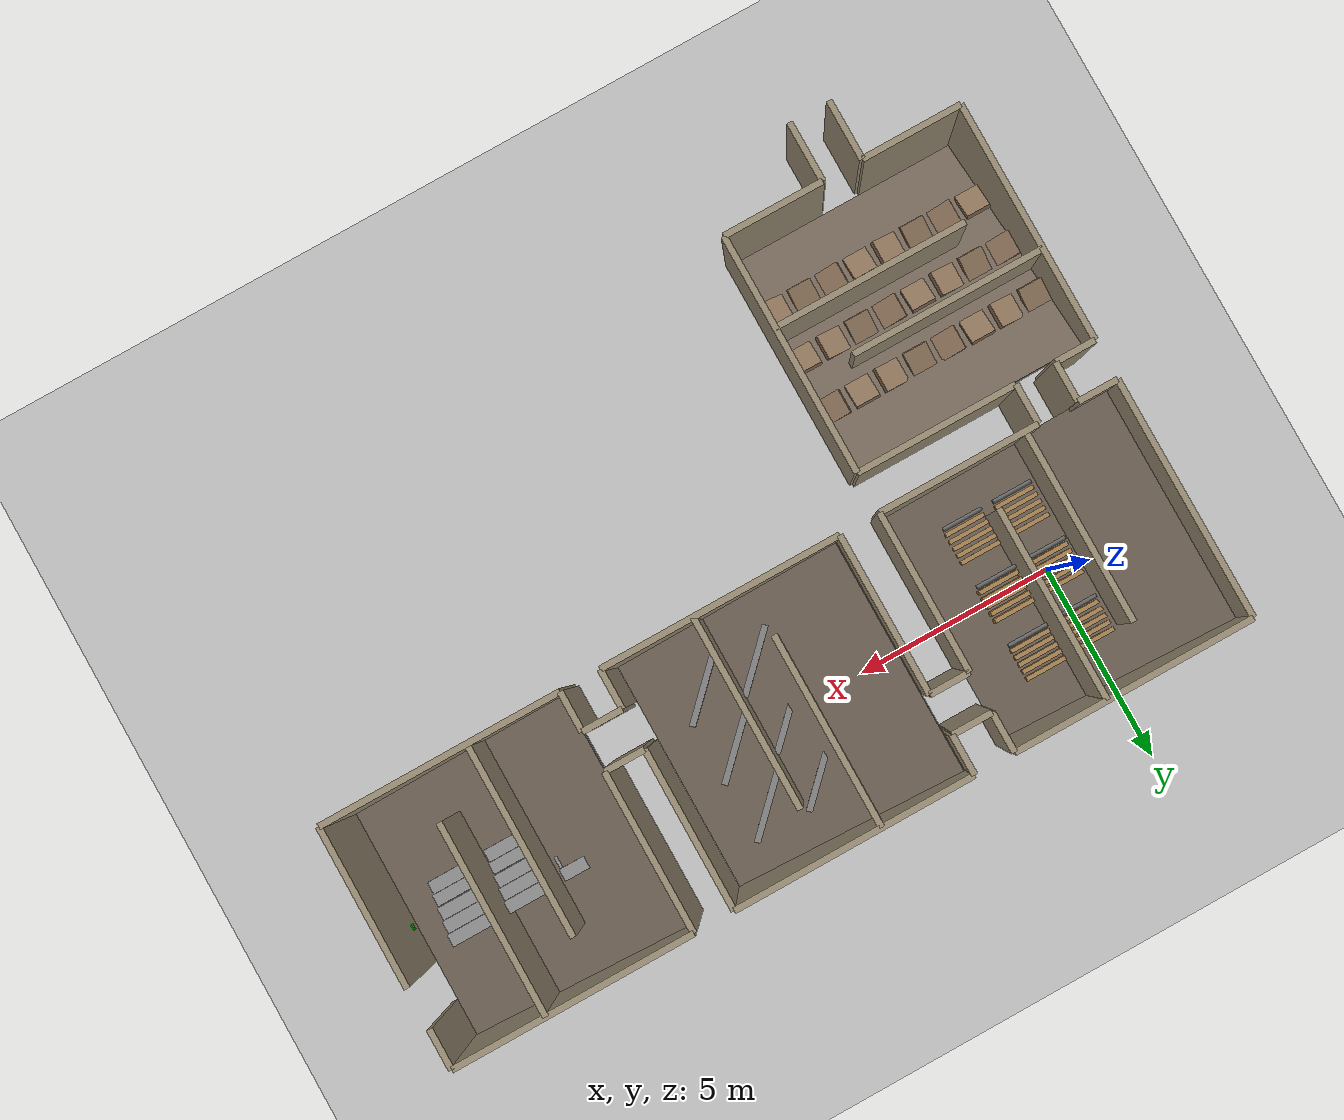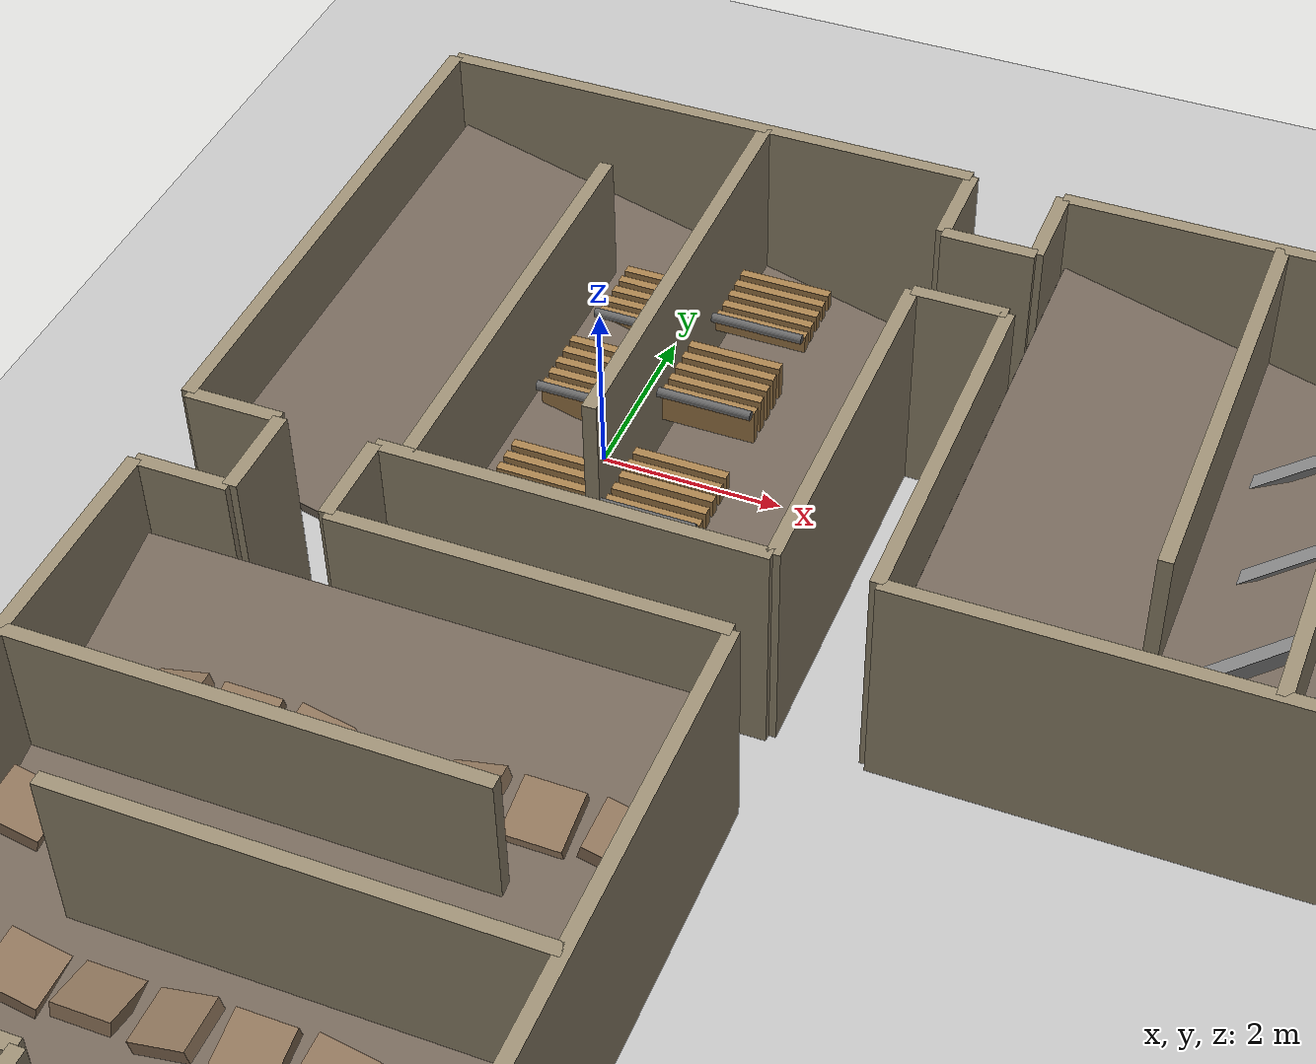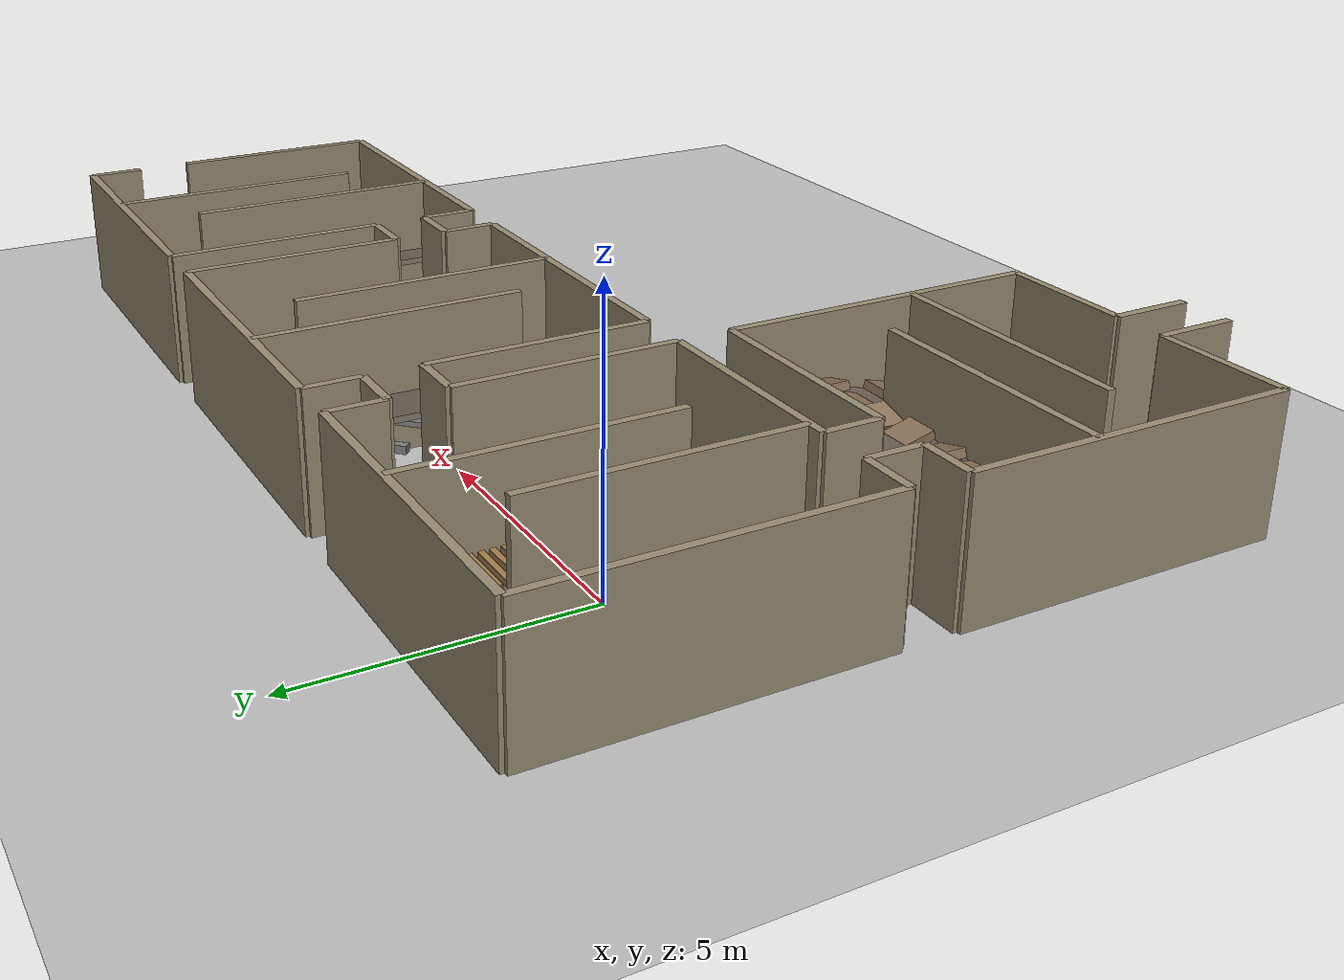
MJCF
<mujoco model="lrc_2025_atlanta">
  <compiler angle="radian" coordinate="local"/>
  <option timestep="0.002" gravity="0 0 -9.81"/>

  <asset>
    <texture name="grid" type="2d" builtin="checker"
             rgb1="0.8 0.8 0.8" rgb2="0.7 0.7 0.7"
             width="512" height="512"/>
    <material name="ground_mat" texture="grid" texrepeat="10 10"/>
  </asset>

  <worldbody>
    <light pos="0 0 10" dir="-0.5 0.1 -0.9" diffuse="0.8 0.8 0.8"/>
    <geom name="ground" type="plane" size="25 25 0.1"
          material="ground_mat"/>

    <geom name="LA_S_a" type="box" pos="-1.7500 -10.0000 1.2500" size="1.2500 0.0750 1.2500" rgba="0.6 0.55 0.45 1.0"/>
    <geom name="LA_S_b" type="box" pos="1.7500 -10.0000 1.2500" size="1.2500 0.0750 1.2500" rgba="0.6 0.55 0.45 1.0"/>
    <geom name="LA_N_a" type="box" pos="-2.5000 -4.0000 1.2500" size="0.5000 0.0750 1.2500" rgba="0.6 0.55 0.45 1.0"/>
    <geom name="LA_N_b" type="box" pos="1.0000 -4.0000 1.2500" size="2.0000 0.0750 1.2500" rgba="0.6 0.55 0.45 1.0"/>
    <geom name="LA_W" type="box" pos="-3.0000 -7.0000 1.2500" size="0.0750 3.0000 1.2500" rgba="0.6 0.55 0.45 1.0"/>
    <geom name="LA_E" type="box" pos="3.0000 -7.0000 1.2500" size="0.0750 3.0000 1.2500" rgba="0.6 0.55 0.45 1.0"/>
    <geom name="LA_d0" type="box" pos="0.6000 -7.6750 1.2500" size="2.4000 0.0750 1.2500" rgba="0.6 0.55 0.45 1.0"/>
    <geom name="LA_d1" type="box" pos="-0.6000 -6.3250 1.2500" size="2.4000 0.0750 1.2500" rgba="0.6 0.55 0.45 1.0"/>
    <geom name="LA_floor" type="box" pos="0 -7 0.8248" size="3.0000 3.0000 0.0500" rgba="0.45 0.4 0.35 1.0" euler="0.2618 0 0"/>
    <geom name="ramp_0_0" type="box" pos="-2.6250 -8.3500 0.6036" size="0.3000 0.3000 0.0800" rgba="0.55 0.45 0.35 1.0" euler="0.2618 0 0"/>
    <geom name="ramp_0_1" type="box" pos="-1.8750 -8.3500 0.6036" size="0.3000 0.3000 0.0800" rgba="0.55 0.45 0.35 1.0" euler="0 0.2618 0"/>
    <geom name="ramp_0_2" type="box" pos="-1.1250 -8.3500 0.6036" size="0.3000 0.3000 0.0800" rgba="0.55 0.45 0.35 1.0" euler="-0.2618 0 0"/>
    <geom name="ramp_0_3" type="box" pos="-0.3750 -8.3500 0.6036" size="0.3000 0.3000 0.0800" rgba="0.55 0.45 0.35 1.0" euler="0 -0.2618 0"/>
    <geom name="ramp_0_4" type="box" pos="0.3750 -8.3500 0.6036" size="0.3000 0.3000 0.0800" rgba="0.55 0.45 0.35 1.0" euler="0.2618 0 0"/>
    <geom name="ramp_0_5" type="box" pos="1.1250 -8.3500 0.6036" size="0.3000 0.3000 0.0800" rgba="0.55 0.45 0.35 1.0" euler="0 0.2618 0"/>
    <geom name="ramp_0_6" type="box" pos="1.8750 -8.3500 0.6036" size="0.3000 0.3000 0.0800" rgba="0.55 0.45 0.35 1.0" euler="-0.2618 0 0"/>
    <geom name="ramp_0_7" type="box" pos="2.6250 -8.3500 0.6036" size="0.3000 0.3000 0.0800" rgba="0.55 0.45 0.35 1.0" euler="0 -0.2618 0"/>
    <geom name="ramp_1_0" type="box" pos="-2.6250 -7.0000 0.9530" size="0.3000 0.3000 0.0800" rgba="0.55 0.45 0.35 1.0" euler="0 0.2618 0"/>
    <geom name="ramp_1_1" type="box" pos="-1.8750 -7.0000 0.9530" size="0.3000 0.3000 0.0800" rgba="0.55 0.45 0.35 1.0" euler="-0.2618 0 0"/>
    <geom name="ramp_1_2" type="box" pos="-1.1250 -7.0000 0.9530" size="0.3000 0.3000 0.0800" rgba="0.55 0.45 0.35 1.0" euler="0 -0.2618 0"/>
    <geom name="ramp_1_3" type="box" pos="-0.3750 -7.0000 0.9530" size="0.3000 0.3000 0.0800" rgba="0.55 0.45 0.35 1.0" euler="0.2618 0 0"/>
    <geom name="ramp_1_4" type="box" pos="0.3750 -7.0000 0.9530" size="0.3000 0.3000 0.0800" rgba="0.55 0.45 0.35 1.0" euler="0 0.2618 0"/>
    <geom name="ramp_1_5" type="box" pos="1.1250 -7.0000 0.9530" size="0.3000 0.3000 0.0800" rgba="0.55 0.45 0.35 1.0" euler="-0.2618 0 0"/>
    <geom name="ramp_1_6" type="box" pos="1.8750 -7.0000 0.9530" size="0.3000 0.3000 0.0800" rgba="0.55 0.45 0.35 1.0" euler="0 -0.2618 0"/>
    <geom name="ramp_1_7" type="box" pos="2.6250 -7.0000 0.9530" size="0.3000 0.3000 0.0800" rgba="0.55 0.45 0.35 1.0" euler="0.2618 0 0"/>
    <geom name="ramp_2_0" type="box" pos="-2.6250 -5.6500 1.3025" size="0.3000 0.3000 0.0800" rgba="0.55 0.45 0.35 1.0" euler="-0.2618 0 0"/>
    <geom name="ramp_2_1" type="box" pos="-1.8750 -5.6500 1.3025" size="0.3000 0.3000 0.0800" rgba="0.55 0.45 0.35 1.0" euler="0 -0.2618 0"/>
    <geom name="ramp_2_2" type="box" pos="-1.1250 -5.6500 1.3025" size="0.3000 0.3000 0.0800" rgba="0.55 0.45 0.35 1.0" euler="0.2618 0 0"/>
    <geom name="ramp_2_3" type="box" pos="-0.3750 -5.6500 1.3025" size="0.3000 0.3000 0.0800" rgba="0.55 0.45 0.35 1.0" euler="0 0.2618 0"/>
    <geom name="ramp_2_4" type="box" pos="0.3750 -5.6500 1.3025" size="0.3000 0.3000 0.0800" rgba="0.55 0.45 0.35 1.0" euler="-0.2618 0 0"/>
    <geom name="ramp_2_5" type="box" pos="1.1250 -5.6500 1.3025" size="0.3000 0.3000 0.0800" rgba="0.55 0.45 0.35 1.0" euler="0 -0.2618 0"/>
    <geom name="ramp_2_6" type="box" pos="1.8750 -5.6500 1.3025" size="0.3000 0.3000 0.0800" rgba="0.55 0.45 0.35 1.0" euler="0.2618 0 0"/>
    <geom name="ramp_2_7" type="box" pos="2.6250 -5.6500 1.3025" size="0.3000 0.3000 0.0800" rgba="0.55 0.45 0.35 1.0" euler="0 0.2618 0"/>
    <geom name="qr_A" type="box" pos="-2.8500 -7 0.6000" size="0.0100 0.0750 0.0750" rgba="0.0 0.8 0.0 1.0"/>
    <geom name="haz_A" type="box" pos="1.5000 -8.3500 0.0600" size="0.0600 0.0600 0.0600" rgba="1.0 0.5 0.0 1.0"/>
    <geom name="es_A" type="box" pos="2.0000 -9.5000 0.0400" size="0.0400 0.0400 0.0400" rgba="0.9 0.9 0.0 1.0"/>
    <geom name="esb_A" type="cylinder" pos="2.0000 -9.5000 0.1000" size="0.03 0.0200" rgba="1.0 0.0 0.0 1.0"/>
    <geom name="LC_S_a" type="box" pos="-2.5000 -3.0000 1.2500" size="0.5000 0.0750 1.2500" rgba="0.6 0.55 0.45 1.0"/>
    <geom name="LC_S_b" type="box" pos="1.0000 -3.0000 1.2500" size="2.0000 0.0750 1.2500" rgba="0.6 0.55 0.45 1.0"/>
    <geom name="LC_N" type="box" pos="0.0000 3.0000 1.2500" size="3.0000 0.0750 1.2500" rgba="0.6 0.55 0.45 1.0"/>
    <geom name="LC_W" type="box" pos="-3.0000 0.0000 1.2500" size="0.0750 3.0000 1.2500" rgba="0.6 0.55 0.45 1.0"/>
    <geom name="LC_E_a" type="box" pos="3.0000 -1.0000 1.2500" size="0.0750 2.0000 1.2500" rgba="0.6 0.55 0.45 1.0"/>
    <geom name="LC_E_b" type="box" pos="3.0000 2.5000 1.2500" size="0.0750 0.5000 1.2500" rgba="0.6 0.55 0.45 1.0"/>
    <geom name="LC_d0" type="box" pos="-0.6750 -0.6000 1.2500" size="0.0750 2.4000 1.2500" rgba="0.6 0.55 0.45 1.0"/>
    <geom name="LC_d1" type="box" pos="0.6750 0.6000 1.2500" size="0.0750 2.4000 1.2500" rgba="0.6 0.55 0.45 1.0"/>
    <geom name="LC_floor" type="box" pos="0 0 0.8248" size="3.0000 3.0000 0.0500" rgba="0.45 0.4 0.35 1.0" euler="0 0.2618 0"/>
    <geom name="plt_0_0_0" type="box" pos="-1.3500 -1.8600 0.6236" size="0.5000 0.0500 0.1000" rgba="0.65 0.5 0.3 1.0"/>
    <geom name="plt_0_0_1" type="box" pos="-1.3500 -1.6800 0.6236" size="0.5000 0.0500 0.1000" rgba="0.65 0.5 0.3 1.0"/>
    <geom name="plt_0_0_2" type="box" pos="-1.3500 -1.5000 0.6236" size="0.5000 0.0500 0.1000" rgba="0.65 0.5 0.3 1.0"/>
    <geom name="plt_0_0_3" type="box" pos="-1.3500 -1.3200 0.6236" size="0.5000 0.0500 0.1000" rgba="0.65 0.5 0.3 1.0"/>
    <geom name="plt_0_0_4" type="box" pos="-1.3500 -1.1400 0.6236" size="0.5000 0.0500 0.1000" rgba="0.65 0.5 0.3 1.0"/>
    <geom name="pipe_0_0" type="cylinder" pos="-1.3500 -2.0000 0.7736" size="0.05 0.5000" rgba="0.4 0.4 0.4 1.0" euler="0 1.5708 0"/>
    <geom name="plt_0_1_0" type="box" pos="-1.3500 -0.3600 0.7236" size="0.5000 0.0500 0.2000" rgba="0.65 0.5 0.3 1.0"/>
    <geom name="plt_0_1_1" type="box" pos="-1.3500 -0.1800 0.7236" size="0.5000 0.0500 0.2000" rgba="0.65 0.5 0.3 1.0"/>
    <geom name="plt_0_1_2" type="box" pos="-1.3500 0.0000 0.7236" size="0.5000 0.0500 0.2000" rgba="0.65 0.5 0.3 1.0"/>
    <geom name="plt_0_1_3" type="box" pos="-1.3500 0.1800 0.7236" size="0.5000 0.0500 0.2000" rgba="0.65 0.5 0.3 1.0"/>
    <geom name="plt_0_1_4" type="box" pos="-1.3500 0.3600 0.7236" size="0.5000 0.0500 0.2000" rgba="0.65 0.5 0.3 1.0"/>
    <geom name="pipe_0_1" type="cylinder" pos="-1.3500 -0.5000 0.9736" size="0.05 0.5000" rgba="0.4 0.4 0.4 1.0" euler="0 1.5708 0"/>
    <geom name="plt_0_2_0" type="box" pos="-1.3500 1.1400 0.6236" size="0.5000 0.0500 0.1000" rgba="0.65 0.5 0.3 1.0"/>
    <geom name="plt_0_2_1" type="box" pos="-1.3500 1.3200 0.6236" size="0.5000 0.0500 0.1000" rgba="0.65 0.5 0.3 1.0"/>
    <geom name="plt_0_2_2" type="box" pos="-1.3500 1.5000 0.6236" size="0.5000 0.0500 0.1000" rgba="0.65 0.5 0.3 1.0"/>
    <geom name="plt_0_2_3" type="box" pos="-1.3500 1.6800 0.6236" size="0.5000 0.0500 0.1000" rgba="0.65 0.5 0.3 1.0"/>
    <geom name="plt_0_2_4" type="box" pos="-1.3500 1.8600 0.6236" size="0.5000 0.0500 0.1000" rgba="0.65 0.5 0.3 1.0"/>
    <geom name="pipe_0_2" type="cylinder" pos="-1.3500 1.0000 0.7736" size="0.05 0.5000" rgba="0.4 0.4 0.4 1.0" euler="0 1.5708 0"/>
    <geom name="plt_1_0_0" type="box" pos="0.0000 -1.8600 0.9730" size="0.5000 0.0500 0.1000" rgba="0.65 0.5 0.3 1.0"/>
    <geom name="plt_1_0_1" type="box" pos="0.0000 -1.6800 0.9730" size="0.5000 0.0500 0.1000" rgba="0.65 0.5 0.3 1.0"/>
    <geom name="plt_1_0_2" type="box" pos="0.0000 -1.5000 0.9730" size="0.5000 0.0500 0.1000" rgba="0.65 0.5 0.3 1.0"/>
    <geom name="plt_1_0_3" type="box" pos="0.0000 -1.3200 0.9730" size="0.5000 0.0500 0.1000" rgba="0.65 0.5 0.3 1.0"/>
    <geom name="plt_1_0_4" type="box" pos="0.0000 -1.1400 0.9730" size="0.5000 0.0500 0.1000" rgba="0.65 0.5 0.3 1.0"/>
    <geom name="pipe_1_0" type="cylinder" pos="0.0000 -2.0000 1.1230" size="0.05 0.5000" rgba="0.4 0.4 0.4 1.0" euler="0 1.5708 0"/>
    <geom name="plt_1_1_0" type="box" pos="0.0000 -0.3600 1.0730" size="0.5000 0.0500 0.2000" rgba="0.65 0.5 0.3 1.0"/>
    <geom name="plt_1_1_1" type="box" pos="0.0000 -0.1800 1.0730" size="0.5000 0.0500 0.2000" rgba="0.65 0.5 0.3 1.0"/>
    <geom name="plt_1_1_2" type="box" pos="0.0000 0.0000 1.0730" size="0.5000 0.0500 0.2000" rgba="0.65 0.5 0.3 1.0"/>
    <geom name="plt_1_1_3" type="box" pos="0.0000 0.1800 1.0730" size="0.5000 0.0500 0.2000" rgba="0.65 0.5 0.3 1.0"/>
    <geom name="plt_1_1_4" type="box" pos="0.0000 0.3600 1.0730" size="0.5000 0.0500 0.2000" rgba="0.65 0.5 0.3 1.0"/>
    <geom name="pipe_1_1" type="cylinder" pos="0.0000 -0.5000 1.3230" size="0.05 0.5000" rgba="0.4 0.4 0.4 1.0" euler="0 1.5708 0"/>
    <geom name="plt_1_2_0" type="box" pos="0.0000 1.1400 0.9730" size="0.5000 0.0500 0.1000" rgba="0.65 0.5 0.3 1.0"/>
    <geom name="plt_1_2_1" type="box" pos="0.0000 1.3200 0.9730" size="0.5000 0.0500 0.1000" rgba="0.65 0.5 0.3 1.0"/>
    <geom name="plt_1_2_2" type="box" pos="0.0000 1.5000 0.9730" size="0.5000 0.0500 0.1000" rgba="0.65 0.5 0.3 1.0"/>
    <geom name="plt_1_2_3" type="box" pos="0.0000 1.6800 0.9730" size="0.5000 0.0500 0.1000" rgba="0.65 0.5 0.3 1.0"/>
    <geom name="plt_1_2_4" type="box" pos="0.0000 1.8600 0.9730" size="0.5000 0.0500 0.1000" rgba="0.65 0.5 0.3 1.0"/>
    <geom name="pipe_1_2" type="cylinder" pos="0.0000 1.0000 1.1230" size="0.05 0.5000" rgba="0.4 0.4 0.4 1.0" euler="0 1.5708 0"/>
    <geom name="plt_2_0_0" type="box" pos="1.3500 -1.8600 1.3225" size="0.5000 0.0500 0.1000" rgba="0.65 0.5 0.3 1.0"/>
    <geom name="plt_2_0_1" type="box" pos="1.3500 -1.6800 1.3225" size="0.5000 0.0500 0.1000" rgba="0.65 0.5 0.3 1.0"/>
    <geom name="plt_2_0_2" type="box" pos="1.3500 -1.5000 1.3225" size="0.5000 0.0500 0.1000" rgba="0.65 0.5 0.3 1.0"/>
    <geom name="plt_2_0_3" type="box" pos="1.3500 -1.3200 1.3225" size="0.5000 0.0500 0.1000" rgba="0.65 0.5 0.3 1.0"/>
    <geom name="plt_2_0_4" type="box" pos="1.3500 -1.1400 1.3225" size="0.5000 0.0500 0.1000" rgba="0.65 0.5 0.3 1.0"/>
    <geom name="pipe_2_0" type="cylinder" pos="1.3500 -2.0000 1.4725" size="0.05 0.5000" rgba="0.4 0.4 0.4 1.0" euler="0 1.5708 0"/>
    <geom name="plt_2_1_0" type="box" pos="1.3500 -0.3600 1.4225" size="0.5000 0.0500 0.2000" rgba="0.65 0.5 0.3 1.0"/>
    <geom name="plt_2_1_1" type="box" pos="1.3500 -0.1800 1.4225" size="0.5000 0.0500 0.2000" rgba="0.65 0.5 0.3 1.0"/>
    <geom name="plt_2_1_2" type="box" pos="1.3500 0.0000 1.4225" size="0.5000 0.0500 0.2000" rgba="0.65 0.5 0.3 1.0"/>
    <geom name="plt_2_1_3" type="box" pos="1.3500 0.1800 1.4225" size="0.5000 0.0500 0.2000" rgba="0.65 0.5 0.3 1.0"/>
    <geom name="plt_2_1_4" type="box" pos="1.3500 0.3600 1.4225" size="0.5000 0.0500 0.2000" rgba="0.65 0.5 0.3 1.0"/>
    <geom name="pipe_2_1" type="cylinder" pos="1.3500 -0.5000 1.6725" size="0.05 0.5000" rgba="0.4 0.4 0.4 1.0" euler="0 1.5708 0"/>
    <geom name="plt_2_2_0" type="box" pos="1.3500 1.1400 1.3225" size="0.5000 0.0500 0.1000" rgba="0.65 0.5 0.3 1.0"/>
    <geom name="plt_2_2_1" type="box" pos="1.3500 1.3200 1.3225" size="0.5000 0.0500 0.1000" rgba="0.65 0.5 0.3 1.0"/>
    <geom name="plt_2_2_2" type="box" pos="1.3500 1.5000 1.3225" size="0.5000 0.0500 0.1000" rgba="0.65 0.5 0.3 1.0"/>
    <geom name="plt_2_2_3" type="box" pos="1.3500 1.6800 1.3225" size="0.5000 0.0500 0.1000" rgba="0.65 0.5 0.3 1.0"/>
    <geom name="plt_2_2_4" type="box" pos="1.3500 1.8600 1.3225" size="0.5000 0.0500 0.1000" rgba="0.65 0.5 0.3 1.0"/>
    <geom name="pipe_2_2" type="cylinder" pos="1.3500 1.0000 1.4725" size="0.05 0.5000" rgba="0.4 0.4 0.4 1.0" euler="0 1.5708 0"/>
    <geom name="qr_C" type="box" pos="0 2.8500 0.6000" size="0.0750 0.0100 0.0750" rgba="0.0 0.8 0.0 1.0"/>
    <geom name="haz_C" type="box" pos="-1.3500 1.5000 0.0600" size="0.0600 0.0600 0.0600" rgba="1.0 0.5 0.0 1.0"/>
    <geom name="LD_S" type="box" pos="7.0000 -3.0000 1.2500" size="3.0000 0.0750 1.2500" rgba="0.6 0.55 0.45 1.0"/>
    <geom name="LD_N" type="box" pos="7.0000 3.0000 1.2500" size="3.0000 0.0750 1.2500" rgba="0.6 0.55 0.45 1.0"/>
    <geom name="LD_W_a" type="box" pos="4.0000 -1.0000 1.2500" size="0.0750 2.0000 1.2500" rgba="0.6 0.55 0.45 1.0"/>
    <geom name="LD_W_b" type="box" pos="4.0000 2.5000 1.2500" size="0.0750 0.5000 1.2500" rgba="0.6 0.55 0.45 1.0"/>
    <geom name="LD_E_a" type="box" pos="10.0000 -2.5000 1.2500" size="0.0750 0.5000 1.2500" rgba="0.6 0.55 0.45 1.0"/>
    <geom name="LD_E_b" type="box" pos="10.0000 1.0000 1.2500" size="0.0750 2.0000 1.2500" rgba="0.6 0.55 0.45 1.0"/>
    <geom name="LD_d0" type="box" pos="6.3250 0.6000 1.2500" size="0.0750 2.4000 1.2500" rgba="0.6 0.55 0.45 1.0"/>
    <geom name="LD_d1" type="box" pos="7.6750 -0.6000 1.2500" size="0.0750 2.4000 1.2500" rgba="0.6 0.55 0.45 1.0"/>
    <geom name="LD_floor" type="box" pos="7 0 0.8248" size="3.0000 3.0000 0.0500" rgba="0.45 0.4 0.35 1.0" euler="0 0.2618 0"/>
    <geom name="kr_0_0" type="box" pos="5.6500 -1.5000 0.5486" size="0.8500 0.0750 0.0250" rgba="0.5 0.5 0.5 1.0" euler="0 0 0.7854"/>
    <geom name="kr_0_1" type="box" pos="5.6500 0.0000 0.5736" size="0.8500 0.0750 0.0500" rgba="0.5 0.5 0.5 1.0" euler="0 0 0.7854"/>
    <geom name="kr_0_2" type="box" pos="5.6500 1.5000 0.5986" size="0.8500 0.0750 0.0750" rgba="0.5 0.5 0.5 1.0" euler="0 0 0.7854"/>
    <geom name="kr_1_0" type="box" pos="7.0000 -1.5000 0.9730" size="0.8500 0.0750 0.1000" rgba="0.5 0.5 0.5 1.0" euler="0 0 0.7854"/>
    <geom name="kr_1_1" type="box" pos="7.0000 0.0000 0.8980" size="0.8500 0.0750 0.0250" rgba="0.5 0.5 0.5 1.0" euler="0 0 0.7854"/>
    <geom name="kr_1_2" type="box" pos="7.0000 1.5000 0.9230" size="0.8500 0.0750 0.0500" rgba="0.5 0.5 0.5 1.0" euler="0 0 0.7854"/>
    <geom name="kr_2_0" type="box" pos="8.3500 -1.5000 1.2975" size="0.8500 0.0750 0.0750" rgba="0.5 0.5 0.5 1.0" euler="0 0 0.7854"/>
    <geom name="kr_2_1" type="box" pos="8.3500 0.0000 1.3225" size="0.8500 0.0750 0.1000" rgba="0.5 0.5 0.5 1.0" euler="0 0 0.7854"/>
    <geom name="kr_2_2" type="box" pos="8.3500 1.5000 1.2475" size="0.8500 0.0750 0.0250" rgba="0.5 0.5 0.5 1.0" euler="0 0 0.7854"/>
    <geom name="qr_D" type="box" pos="7 -2.8500 0.6000" size="0.0750 0.0100 0.0750" rgba="0.0 0.8 0.0 1.0"/>
    <geom name="haz_D" type="box" pos="8.3500 -1.0000 0.0600" size="0.0600 0.0600 0.0600" rgba="1.0 0.5 0.0 1.0"/>
    <geom name="es_D" type="box" pos="7.0000 1.0000 0.0400" size="0.0400 0.0400 0.0400" rgba="0.9 0.9 0.0 1.0"/>
    <geom name="esb_D" type="cylinder" pos="7.0000 1.0000 0.1000" size="0.03 0.0200" rgba="1.0 0.0 0.0 1.0"/>
    <geom name="LF_S" type="box" pos="14.0000 -3.0000 1.2500" size="3.0000 0.0750 1.2500" rgba="0.6 0.55 0.45 1.0"/>
    <geom name="LF_N" type="box" pos="14.0000 3.0000 1.2500" size="3.0000 0.0750 1.2500" rgba="0.6 0.55 0.45 1.0"/>
    <geom name="LF_W_a" type="box" pos="11.0000 -2.5000 1.2500" size="0.0750 0.5000 1.2500" rgba="0.6 0.55 0.45 1.0"/>
    <geom name="LF_W_b" type="box" pos="11.0000 1.0000 1.2500" size="0.0750 2.0000 1.2500" rgba="0.6 0.55 0.45 1.0"/>
    <geom name="LF_E_a" type="box" pos="17.0000 -1.0000 1.2500" size="0.0750 2.0000 1.2500" rgba="0.6 0.55 0.45 1.0"/>
    <geom name="LF_E_b" type="box" pos="17.0000 2.5000 1.2500" size="0.0750 0.5000 1.2500" rgba="0.6 0.55 0.45 1.0"/>
    <geom name="LF_d0" type="box" pos="13.3250 -0.6000 1.2500" size="0.0750 2.4000 1.2500" rgba="0.6 0.55 0.45 1.0"/>
    <geom name="LF_d1" type="box" pos="14.6750 0.6000 1.2500" size="0.0750 2.4000 1.2500" rgba="0.6 0.55 0.45 1.0"/>
    <geom name="LF_floor" type="box" pos="14 0 0.8248" size="3.0000 3.0000 0.0500" rgba="0.45 0.4 0.35 1.0" euler="0 0.2618 0"/>
    <geom name="step_0_0" type="box" pos="12.6500 -0.6000 0.5986" size="0.5000 0.1500 0.0750" rgba="0.55 0.55 0.55 1.0"/>
    <geom name="step_0_1" type="box" pos="12.6500 -0.3000 0.6736" size="0.5000 0.1500 0.1500" rgba="0.55 0.55 0.55 1.0"/>
    <geom name="step_0_2" type="box" pos="12.6500 -0.0000 0.7486" size="0.5000 0.1500 0.2250" rgba="0.55 0.55 0.55 1.0"/>
    <geom name="step_0_3" type="box" pos="12.6500 0.3000 0.8236" size="0.5000 0.1500 0.3000" rgba="0.55 0.55 0.55 1.0"/>
    <geom name="step_0_4" type="box" pos="12.6500 0.6000 0.8986" size="0.5000 0.1500 0.3750" rgba="0.55 0.55 0.55 1.0"/>
    <geom name="debris_0" type="cylinder" pos="12.6500 -0.1500 0.8436" size="0.02 0.5000" rgba="0.4 0.4 0.4 1.0" euler="0.3500 1.5708 0"/>
    <geom name="step_1_0" type="box" pos="14.0000 -0.6000 0.9480" size="0.5000 0.1500 0.0750" rgba="0.55 0.55 0.55 1.0"/>
    <geom name="step_1_1" type="box" pos="14.0000 -0.3000 1.0230" size="0.5000 0.1500 0.1500" rgba="0.55 0.55 0.55 1.0"/>
    <geom name="step_1_2" type="box" pos="14.0000 -0.0000 1.0980" size="0.5000 0.1500 0.2250" rgba="0.55 0.55 0.55 1.0"/>
    <geom name="step_1_3" type="box" pos="14.0000 0.3000 1.1730" size="0.5000 0.1500 0.3000" rgba="0.55 0.55 0.55 1.0"/>
    <geom name="step_1_4" type="box" pos="14.0000 0.6000 1.2480" size="0.5000 0.1500 0.3750" rgba="0.55 0.55 0.55 1.0"/>
    <geom name="debris_1" type="cylinder" pos="14.0000 -0.1500 1.1930" size="0.02 0.5000" rgba="0.4 0.4 0.4 1.0" euler="0.3500 1.5708 0"/>
    <geom name="step_2_0" type="box" pos="15.3500 -0.6000 1.2975" size="0.5000 0.1500 0.0750" rgba="0.55 0.55 0.55 1.0"/>
    <geom name="step_2_1" type="box" pos="15.3500 -0.3000 1.3725" size="0.5000 0.1500 0.1500" rgba="0.55 0.55 0.55 1.0"/>
    <geom name="step_2_2" type="box" pos="15.3500 -0.0000 1.4475" size="0.5000 0.1500 0.2250" rgba="0.55 0.55 0.55 1.0"/>
    <geom name="step_2_3" type="box" pos="15.3500 0.3000 1.5225" size="0.5000 0.1500 0.3000" rgba="0.55 0.55 0.55 1.0"/>
    <geom name="step_2_4" type="box" pos="15.3500 0.6000 1.5975" size="0.5000 0.1500 0.3750" rgba="0.55 0.55 0.55 1.0"/>
    <geom name="debris_2" type="cylinder" pos="15.3500 -0.1500 1.5425" size="0.02 0.5000" rgba="0.4 0.4 0.4 1.0" euler="0.3500 1.5708 0"/>
    <geom name="qr_F" type="box" pos="16.8500 0 0.6000" size="0.0100 0.0750 0.0750" rgba="0.0 0.8 0.0 1.0"/>
    <geom name="haz_F" type="box" pos="12.6500 -1.5000 0.0600" size="0.0600 0.0600 0.0600" rgba="1.0 0.5 0.0 1.0"/>
    <geom name="cor0_W" type="box" pos="-2.0000 -3.5000 1.2500" size="0.0750 0.5000 1.2500" rgba="0.6 0.55 0.45 1.0"/>
    <geom name="cor0_E" type="box" pos="-1.0000 -3.5000 1.2500" size="0.0750 0.5000 1.2500" rgba="0.6 0.55 0.45 1.0"/>
    <geom name="cor1_S" type="box" pos="3.5000 1.0000 1.2500" size="0.5000 0.0750 1.2500" rgba="0.6 0.55 0.45 1.0"/>
    <geom name="cor1_N" type="box" pos="3.5000 2.0000 1.2500" size="0.5000 0.0750 1.2500" rgba="0.6 0.55 0.45 1.0"/>
    <geom name="cor2_S" type="box" pos="10.5000 -2.0000 1.2500" size="0.5000 0.0750 1.2500" rgba="0.6 0.55 0.45 1.0"/>
    <geom name="cor2_N" type="box" pos="10.5000 -1.0000 1.2500" size="0.5000 0.0750 1.2500" rgba="0.6 0.55 0.45 1.0"/>
    <geom name="entry_W" type="box" pos="-0.5000 -10.7500 1.2500" size="0.0750 0.7500 1.2500" rgba="0.6 0.55 0.45 1.0"/>
    <geom name="entry_E" type="box" pos="0.5000 -10.7500 1.2500" size="0.0750 0.7500 1.2500" rgba="0.6 0.55 0.45 1.0"/>
  </worldbody>
</mujoco>
